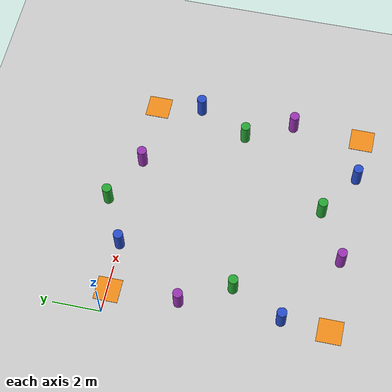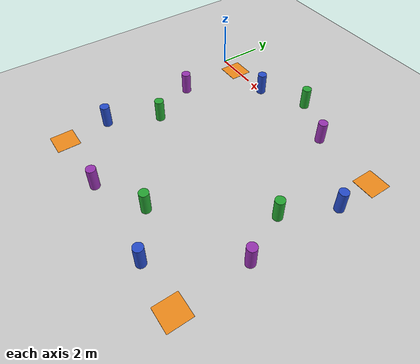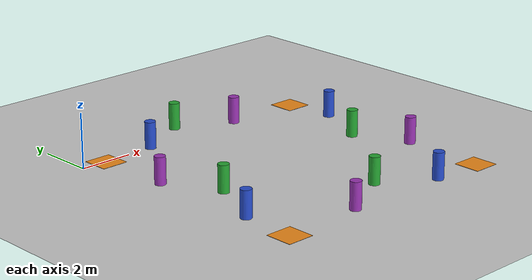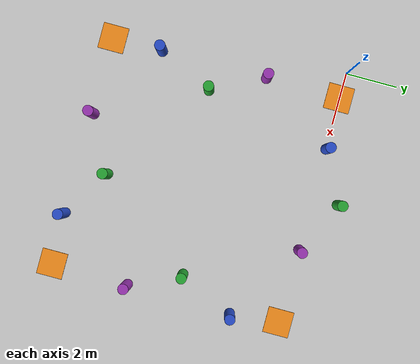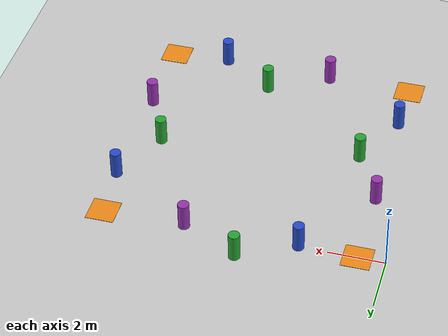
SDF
<sdf version="1.4">
 <world name="default">
  <light name="sun" type="directional">
   <pose>0 0 10 0 -0 0</pose>
   <diffuse>0.8 0.8 0.8 1</diffuse>
   <specular>0.2 0.2 0.2 1</specular>
   <attenuation>
    <range>1000</range>
    <constant>0.9</constant>
    <linear>0.01</linear>
    <quadratic>0.001</quadratic>
   </attenuation>
   <direction>-0.5 0.1 -0.9</direction>
  </light>
  <model name="ground_plane">
   <static>1</static>
   <link name="link">
    <collision name="collision">
     <geometry><plane><normal>0 0 1</normal><size>100 100</size></plane></geometry>
     <surface><friction><ode><mu>100</mu><mu2>50</mu2></ode></friction></surface>
    </collision>
    <visual name="visual">
     <cast_shadows>0</cast_shadows>
     <geometry><plane><normal>0 0 1</normal><size>100 100</size></plane></geometry>
     <material>
      <script><uri>file://media/materials/scripts/gazebo.material</uri><name>Gazebo/Grey</name></script>
     </material>
    </visual>
    <velocity_decay><linear>0</linear><angular>0</angular></velocity_decay>
   </link>
  </model>
  <physics type="ode">
   <max_step_size>0.001</max_step_size>
   <real_time_factor>1</real_time_factor>
   <real_time_update_rate>1000</real_time_update_rate>
   <gravity>0 0 -9.8</gravity>
  </physics>
  <scene><ambient>0.4 0.4 0.4 1</ambient><background>0.7 0.7 0.7 1</background><shadows>1</shadows></scene>
  <model name="unit_cylinder_1">
   <pose>3 0 0.499992 0 -0 0</pose>
   <link name="link">
    <inertial>
     <mass>1</mass>
     <inertia><ixx>1</ixx><ixy>0</ixy><ixz>0</ixz><iyy>1</iyy><iyz>0</iyz><izz>1</izz></inertia>
    </inertial>
    <collision name="collision">
     <geometry><cylinder><radius>0.2</radius><length>1</length></cylinder></geometry>
    </collision>
    <visual name="visual">
     <geometry><cylinder><radius>0.2</radius><length>1</length></cylinder></geometry>
     <material>
      <script><uri>file://media/materials/scripts/gazebo.material</uri><name>Gazebo/Blue</name></script>
     </material>
    </visual>
    <velocity_decay><linear>0</linear><angular>0</angular></velocity_decay>
   </link>
   <static>0</static>
  </model>
  <model name="unit_cylinder_2">
   <pose>4.95801 0.981055 0.499991 0 -0 0</pose>
   <link name="link">
    <inertial>
     <mass>1</mass>
     <inertia><ixx>1</ixx><ixy>0</ixy><ixz>0</ixz><iyy>1</iyy><iyz>0</iyz><izz>1</izz></inertia>
    </inertial>
    <collision name="collision">
     <geometry><cylinder><radius>0.2</radius><length>1</length></cylinder></geometry>
    </collision>
    <visual name="visual">
     <geometry><cylinder><radius>0.2</radius><length>1</length></cylinder></geometry>
     <material>
      <script><uri>file://media/materials/scripts/gazebo.material</uri><name>Gazebo/Green</name></script>
     </material>
    </visual>
    <velocity_decay><linear>0</linear><angular>0</angular></velocity_decay>
   </link>
   <static>0</static>
  </model>
  <model name="unit_cylinder_1_0">
   <pose>7 0 0.499998 0 -0 0</pose>
   <link name="link">
    <inertial>
     <mass>1</mass>
     <inertia><ixx>1</ixx><ixy>0</ixy><ixz>0</ixz><iyy>1</iyy><iyz>0</iyz><izz>1</izz></inertia>
    </inertial>
    <collision name="collision">
     <geometry><cylinder><radius>0.2</radius><length>1</length></cylinder></geometry>
    </collision>
    <visual name="visual">
     <geometry><cylinder><radius>0.2</radius><length>1</length></cylinder></geometry>
     <material>
      <script><uri>file://media/materials/scripts/gazebo.material</uri><name>Gazebo/Purple</name></script>
     </material>
    </visual>
    <velocity_decay><linear>0</linear><angular>0</angular></velocity_decay>
   </link>
   <static>0</static>
  </model>
  <model name="unit_box_1">
   <pose>9.89355 -0.021497 0.005 0 -0 0</pose>
   <link name="link">
    <inertial>
     <mass>1</mass>
     <inertia><ixx>1</ixx><ixy>0</ixy><ixz>0</ixz><iyy>1</iyy><iyz>0</iyz><izz>1</izz></inertia>
    </inertial>
    <collision name="collision"><geometry><box><size>1 1 0.01</size></box></geometry></collision>
    <visual name="visual">
     <geometry><box><size>1 1 0.01</size></box></geometry>
     <material>
      <script><uri>file://media/materials/scripts/gazebo.material</uri><name>Gazebo/Orange</name></script>
     </material>
    </visual>
    <velocity_decay><linear>0</linear><angular>0</angular></velocity_decay>
   </link>
   <static>0</static>
  </model>
  <model name="unit_cylinder_1_1">
   <pose>10.0508 -1.92371 0.499991 0 -0 1e-06</pose>
   <link name="link">
    <inertial>
     <mass>1</mass>
     <inertia><ixx>1</ixx><ixy>0</ixy><ixz>0</ixz><iyy>1</iyy><iyz>0</iyz><izz>1</izz></inertia>
    </inertial>
    <collision name="collision">
     <geometry><cylinder><radius>0.2</radius><length>1</length></cylinder></geometry>
    </collision>
    <visual name="visual">
     <geometry><cylinder><radius>0.2</radius><length>1</length></cylinder></geometry>
     <material>
      <script><uri>file://media/materials/scripts/gazebo.material</uri><name>Gazebo/Blue</name></script>
     </material>
    </visual>
    <velocity_decay><linear>0</linear><angular>0</angular></velocity_decay>
   </link>
   <static>0</static>
  </model>
  <model name="unit_cylinder_2_0">
   <pose>9.06376 -4.03872 0.499992 0 -0 0</pose>
   <link name="link">
    <inertial>
     <mass>1</mass>
     <inertia><ixx>1</ixx><ixy>0</ixy><ixz>0</ixz><iyy>1</iyy><iyz>0</iyz><izz>1</izz></inertia>
    </inertial>
    <collision name="collision">
     <geometry><cylinder><radius>0.2</radius><length>1</length></cylinder></geometry>
    </collision>
    <visual name="visual">
     <geometry><cylinder><radius>0.2</radius><length>1</length></cylinder></geometry>
     <material>
      <script><uri>file://media/materials/scripts/gazebo.material</uri><name>Gazebo/Green</name></script>
     </material>
    </visual>
    <velocity_decay><linear>0</linear><angular>0</angular></velocity_decay>
   </link>
   <static>0</static>
  </model>
  <model name="unit_cylinder_3">
   <pose>9.99724 -5.99148 0.499991 0 -0 1e-06</pose>
   <link name="link">
    <inertial>
     <mass>1</mass>
     <inertia><ixx>1</ixx><ixy>0</ixy><ixz>0</ixz><iyy>1</iyy><iyz>0</iyz><izz>1</izz></inertia>
    </inertial>
    <collision name="collision">
     <geometry><cylinder><radius>0.2</radius><length>1</length></cylinder></geometry>
    </collision>
    <visual name="visual">
     <geometry><cylinder><radius>0.2</radius><length>1</length></cylinder></geometry>
     <material>
      <script><uri>file://media/materials/scripts/gazebo.material</uri><name>Gazebo/Purple</name></script>
     </material>
    </visual>
    <velocity_decay><linear>0</linear><angular>0</angular></velocity_decay>
   </link>
   <static>0</static>
  </model>
  <model name="unit_box_1_0">
   <pose>9.99558 -8.99748 0.005 0 -0 0</pose>
   <link name="link">
    <inertial>
     <mass>1</mass>
     <inertia><ixx>1</ixx><ixy>0</ixy><ixz>0</ixz><iyy>1</iyy><iyz>0</iyz><izz>1</izz></inertia>
    </inertial>
    <collision name="collision"><geometry><box><size>1 1 0.01</size></box></geometry></collision>
    <visual name="visual">
     <geometry><box><size>1 1 0.01</size></box></geometry>
     <material>
      <script><uri>file://media/materials/scripts/gazebo.material</uri><name>Gazebo/Orange</name></script>
     </material>
    </visual>
    <velocity_decay><linear>0</linear><angular>0</angular></velocity_decay>
   </link>
   <static>0</static>
  </model>
  <model name="unit_cylinder_4">
   <pose>7.97375 -9.02319 0.499999 0 -0 1e-06</pose>
   <link name="link">
    <inertial>
     <mass>1</mass>
     <inertia><ixx>1</ixx><ixy>0</ixy><ixz>0</ixz><iyy>1</iyy><iyz>0</iyz><izz>1</izz></inertia>
    </inertial>
    <collision name="collision">
     <geometry><cylinder><radius>0.2</radius><length>1</length></cylinder></geometry>
    </collision>
    <visual name="visual">
     <geometry><cylinder><radius>0.2</radius><length>1</length></cylinder></geometry>
     <material>
      <script><uri>file://media/materials/scripts/gazebo.material</uri><name>Gazebo/Blue</name></script>
     </material>
    </visual>
    <velocity_decay><linear>0</linear><angular>0</angular></velocity_decay>
   </link>
   <static>0</static>
  </model>
  <model name="unit_cylinder_5">
   <pose>6.11006 -7.83581 0.499991 0 -0 0</pose>
   <link name="link">
    <inertial>
     <mass>1</mass>
     <inertia><ixx>1</ixx><ixy>0</ixy><ixz>0</ixz><iyy>1</iyy><iyz>0</iyz><izz>1</izz></inertia>
    </inertial>
    <collision name="collision">
     <geometry><cylinder><radius>0.2</radius><length>1</length></cylinder></geometry>
    </collision>
    <visual name="visual">
     <geometry><cylinder><radius>0.2</radius><length>1</length></cylinder></geometry>
     <material>
      <script><uri>file://media/materials/scripts/gazebo.material</uri><name>Gazebo/Green</name></script>
     </material>
    </visual>
    <velocity_decay><linear>0</linear><angular>0</angular></velocity_decay>
   </link>
   <static>0</static>
  </model>
  <model name="unit_cylinder_6">
   <pose>4.01882 -8.94523 0.499998 0 -0 0</pose>
   <link name="link">
    <inertial>
     <mass>1</mass>
     <inertia><ixx>1</ixx><ixy>0</ixy><ixz>0</ixz><iyy>1</iyy><iyz>0</iyz><izz>1</izz></inertia>
    </inertial>
    <collision name="collision">
     <geometry><cylinder><radius>0.2</radius><length>1</length></cylinder></geometry>
    </collision>
    <visual name="visual">
     <geometry><cylinder><radius>0.2</radius><length>1</length></cylinder></geometry>
     <material>
      <script><uri>file://media/materials/scripts/gazebo.material</uri><name>Gazebo/Purple</name></script>
     </material>
    </visual>
    <velocity_decay><linear>0</linear><angular>0</angular></velocity_decay>
   </link>
   <static>0</static>
  </model>
  <model name="unit_box_2">
   <pose>1.01201 -8.99804 0.005 0 -0 0</pose>
   <link name="link">
    <inertial>
     <mass>1</mass>
     <inertia><ixx>1</ixx><ixy>0</ixy><ixz>0</ixz><iyy>1</iyy><iyz>0</iyz><izz>1</izz></inertia>
    </inertial>
    <collision name="collision"><geometry><box><size>1 1 0.01</size></box></geometry></collision>
    <visual name="visual">
     <geometry><box><size>1 1 0.01</size></box></geometry>
     <material>
      <script><uri>file://media/materials/scripts/gazebo.material</uri><name>Gazebo/Orange</name></script>
     </material>
    </visual>
    <velocity_decay><linear>0</linear><angular>0</angular></velocity_decay>
   </link>
   <static>0</static>
  </model>
  <model name="unit_cylinder_7">
   <pose>1.01977 -7.03236 0.499999 0 -0 1e-06</pose>
   <link name="link">
    <inertial>
     <mass>1</mass>
     <inertia><ixx>1</ixx><ixy>0</ixy><ixz>0</ixz><iyy>1</iyy><iyz>0</iyz><izz>1</izz></inertia>
    </inertial>
    <collision name="collision">
     <geometry><cylinder><radius>0.2</radius><length>1</length></cylinder></geometry>
    </collision>
    <visual name="visual">
     <geometry><cylinder><radius>0.2</radius><length>1</length></cylinder></geometry>
     <material>
      <script><uri>file://media/materials/scripts/gazebo.material</uri><name>Gazebo/Blue</name></script>
     </material>
    </visual>
    <velocity_decay><linear>0</linear><angular>0</angular></velocity_decay>
   </link>
   <static>0</static>
  </model>
  <model name="unit_cylinder_8">
   <pose>1.99661 -4.91758 0.499992 0 -0 0</pose>
   <link name="link">
    <inertial>
     <mass>1</mass>
     <inertia><ixx>1</ixx><ixy>0</ixy><ixz>0</ixz><iyy>1</iyy><iyz>0</iyz><izz>1</izz></inertia>
    </inertial>
    <collision name="collision">
     <geometry><cylinder><radius>0.2</radius><length>1</length></cylinder></geometry>
    </collision>
    <visual name="visual">
     <geometry><cylinder><radius>0.2</radius><length>1</length></cylinder></geometry>
     <material>
      <script><uri>file://media/materials/scripts/gazebo.material</uri><name>Gazebo/Green</name></script>
     </material>
    </visual>
    <velocity_decay><linear>0</linear><angular>0</angular></velocity_decay>
   </link>
   <static>0</static>
  </model>
  <model name="unit_cylinder_9">
   <pose>0.976848 -2.91373 0.499999 0 -0 0</pose>
   <link name="link">
    <inertial>
     <mass>1</mass>
     <inertia><ixx>1</ixx><ixy>0</ixy><ixz>0</ixz><iyy>1</iyy><iyz>0</iyz><izz>1</izz></inertia>
    </inertial>
    <collision name="collision">
     <geometry><cylinder><radius>0.2</radius><length>1</length></cylinder></geometry>
    </collision>
    <visual name="visual">
     <geometry><cylinder><radius>0.2</radius><length>1</length></cylinder></geometry>
     <material>
      <script><uri>file://media/materials/scripts/gazebo.material</uri><name>Gazebo/Purple</name></script>
     </material>
    </visual>
    <velocity_decay><linear>0</linear><angular>0</angular></velocity_decay>
   </link>
   <static>0</static>
  </model>
  <model name="unit_box_3">
   <pose>0.976153 -0.024406 0.005 0 -0 0</pose>
   <link name="link">
    <inertial>
     <mass>1</mass>
     <inertia><ixx>1</ixx><ixy>0</ixy><ixz>0</ixz><iyy>1</iyy><iyz>0</iyz><izz>1</izz></inertia>
    </inertial>
    <collision name="collision"><geometry><box><size>1 1 0.01</size></box></geometry></collision>
    <visual name="visual">
     <geometry><box><size>1 1 0.01</size></box></geometry>
     <material>
      <script><uri>file://media/materials/scripts/gazebo.material</uri><name>Gazebo/Orange</name></script>
     </material>
    </visual>
    <velocity_decay><linear>0</linear><angular>0</angular></velocity_decay>
   </link>
   <static>0</static>
  </model>
 </world>
</sdf>
